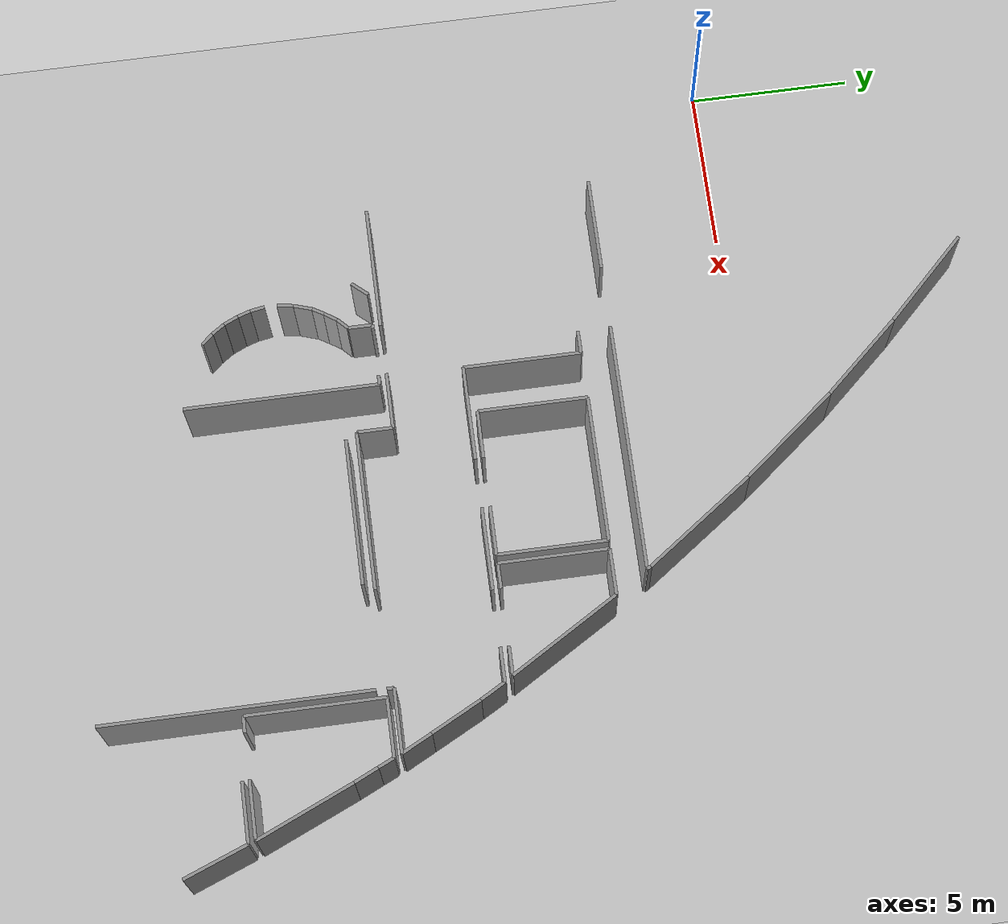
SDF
<sdf version="1.6">
 <world name="default">
  <model name="ground_plane">
   <static>1</static>
   <link name="link">
    <collision name="collision">
     <geometry><plane><normal>0 0 1</normal><size>100 100</size></plane></geometry>
     <surface><friction><ode><mu>100</mu><mu2>50</mu2></ode></friction></surface>
    </collision>
    <visual name="visual">
     <cast_shadows>0</cast_shadows>
     <geometry><plane><normal>0 0 1</normal><size>100 100</size></plane></geometry>
     <material>
      <script><uri>file://media/materials/scripts/gazebo.material</uri><name>Gazebo/Grey</name></script>
     </material>
    </visual>
   </link>
  </model>
  <model name="50041194">
   <static>1</static>
   <link name="Wall_10">
    <collision name="Wall_10_Collision">
     <geometry><box><size>3.47212504948 0.1 2.5</size></box></geometry>
     <pose>1.73606252474 0 1.25 0 0 0</pose>
    </collision>
    <visual name="Wall_10_Visual">
     <pose>1.73606252474 0 1.25 0 0 0</pose>
     <geometry><box><size>3.47212504948 0.1 2.5</size></box></geometry>
     <material>
      <script><uri>file://media/materials/scripts/gazebo.material</uri><name>Gazebo/Grey</name></script>
      <ambient>1 1 1 1</ambient>
     </material>
    </visual>
    <pose>32.4616538105 -17.5243928785 0 0 0 -0.795180966372</pose>
   </link>
   <link name="Wall_11">
    <collision name="Wall_11_Collision">
     <geometry><box><size>3.1130207171 0.1 2.5</size></box></geometry>
     <pose>1.55651035855 0 1.25 0 0 0</pose>
    </collision>
    <visual name="Wall_11_Visual">
     <pose>1.55651035855 0 1.25 0 0 0</pose>
     <geometry><box><size>3.1130207171 0.1 2.5</size></box></geometry>
     <material>
      <script><uri>file://media/materials/scripts/gazebo.material</uri><name>Gazebo/Grey</name></script>
      <ambient>1 1 1 1</ambient>
     </material>
    </visual>
    <pose>34.8926815011 -20.0034565579 0 0 0 -0.837783997723</pose>
   </link>
   <link name="Wall_12">
    <collision name="Wall_12_Collision">
     <geometry><box><size>3.6700077052 0.1 2.5</size></box></geometry>
     <pose>1.8350038526 0 1.25 0 0 0</pose>
    </collision>
    <visual name="Wall_12_Visual">
     <pose>1.8350038526 0 1.25 0 0 0</pose>
     <geometry><box><size>3.6700077052 0.1 2.5</size></box></geometry>
     <material>
      <script><uri>file://media/materials/scripts/gazebo.material</uri><name>Gazebo/Grey</name></script>
      <ambient>1 1 1 1</ambient>
     </material>
    </visual>
    <pose>36.9756388914 -22.3169358631 0 0 0 -0.895433494104</pose>
   </link>
   <link name="Wall_13">
    <collision name="Wall_13_Collision">
     <geometry><box><size>4.07445456339 0.1 2.5</size></box></geometry>
     <pose>2.0372272817 0 1.25 0 0 0</pose>
    </collision>
    <visual name="Wall_13_Visual">
     <pose>2.0372272817 0 1.25 0 0 0</pose>
     <geometry><box><size>4.07445456339 0.1 2.5</size></box></geometry>
     <material>
      <script><uri>file://media/materials/scripts/gazebo.material</uri><name>Gazebo/Grey</name></script>
      <ambient>1 1 1 1</ambient>
     </material>
    </visual>
    <pose>39.2700562961 -25.1813040881 0 0 0 -0.949198087053</pose>
   </link>
   <link name="Wall_14">
    <collision name="Wall_14_Collision">
     <geometry><box><size>0.130030728321 0.1 2.5</size></box></geometry>
     <pose>0.0650153641607 0 1.25 0 0 0</pose>
    </collision>
    <visual name="Wall_14_Visual">
     <pose>0.0650153641607 0 1.25 0 0 0</pose>
     <geometry><box><size>0.130030728321 0.1 2.5</size></box></geometry>
     <material>
      <script><uri>file://media/materials/scripts/gazebo.material</uri><name>Gazebo/Grey</name></script>
      <ambient>1 1 1 1</ambient>
     </material>
    </visual>
    <pose>41.6427545717 -28.4936269713 0 0 0 -1.10671165488</pose>
   </link>
   <link name="Wall_15">
    <collision name="Wall_15_Collision">
     <geometry><box><size>7.74739169664 0.1 2.5</size></box></geometry>
     <pose>3.87369584832 0 1.25 0 0 0</pose>
    </collision>
    <visual name="Wall_15_Visual">
     <pose>3.87369584832 0 1.25 0 0 0</pose>
     <geometry><box><size>7.74739169664 0.1 2.5</size></box></geometry>
     <material>
      <script><uri>file://media/materials/scripts/gazebo.material</uri><name>Gazebo/Grey</name></script>
      <ambient>1 1 1 1</ambient>
     </material>
    </visual>
    <pose>41.7009569074 -28.6099045634 0 0 0 3.14159265359</pose>
   </link>
   <link name="Wall_16">
    <collision name="Wall_16_Collision">
     <geometry><box><size>2.90630440584 0.1 2.5</size></box></geometry>
     <pose>1.45315220292 0 1.25 0 0 0</pose>
    </collision>
    <visual name="Wall_16_Visual">
     <pose>1.45315220292 0 1.25 0 0 0</pose>
     <geometry><box><size>2.90630440584 0.1 2.5</size></box></geometry>
     <material>
      <script><uri>file://media/materials/scripts/gazebo.material</uri><name>Gazebo/Grey</name></script>
      <ambient>1 1 1 1</ambient>
     </material>
    </visual>
    <pose>31.9997204255 -28.6099045634 0 0 0 3.14159265359</pose>
   </link>
   <link name="Wall_37">
    <collision name="Wall_37_Collision">
     <geometry><box><size>0.702113329352 0.1 2.5</size></box></geometry>
     <pose>0.351056664676 0 1.25 0 0 0</pose>
    </collision>
    <visual name="Wall_37_Visual">
     <pose>0.351056664676 0 1.25 0 0 0</pose>
     <geometry><box><size>0.702113329352 0.1 2.5</size></box></geometry>
     <material>
      <script><uri>file://media/materials/scripts/gazebo.material</uri><name>Gazebo/Grey</name></script>
      <ambient>1 1 1 1</ambient>
     </material>
    </visual>
    <pose>33.9738979045 -29.6161187429 0 0 0 0.0</pose>
   </link>
   <link name="Wall_38">
    <collision name="Wall_38_Collision">
     <geometry><box><size>3.6105780839 0.1 2.5</size></box></geometry>
     <pose>1.80528904195 0 1.25 0 0 0</pose>
    </collision>
    <visual name="Wall_38_Visual">
     <pose>1.80528904195 0 1.25 0 0 0</pose>
     <geometry><box><size>3.6105780839 0.1 2.5</size></box></geometry>
     <material>
      <script><uri>file://media/materials/scripts/gazebo.material</uri><name>Gazebo/Grey</name></script>
      <ambient>1 1 1 1</ambient>
     </material>
    </visual>
    <pose>34.6760112338 -29.6161187429 0 0 0 -1.57079632679</pose>
   </link>
   <link name="Wall_39">
    <collision name="Wall_39_Collision">
     <geometry><box><size>2.95522995006 0.1 2.5</size></box></geometry>
     <pose>1.47761497503 0 1.25 0 0 0</pose>
    </collision>
    <visual name="Wall_39_Visual">
     <pose>1.47761497503 0 1.25 0 0 0</pose>
     <geometry><box><size>2.95522995006 0.1 2.5</size></box></geometry>
     <material>
      <script><uri>file://media/materials/scripts/gazebo.material</uri><name>Gazebo/Grey</name></script>
      <ambient>1 1 1 1</ambient>
     </material>
    </visual>
    <pose>34.6760112338 -33.2266968268 0 0 0 0.0</pose>
   </link>
   <link name="Wall_40">
    <collision name="Wall_40_Collision">
     <geometry><box><size>2.56115693027 0.1 2.5</size></box></geometry>
     <pose>1.28057846514 0 1.25 0 0 0</pose>
    </collision>
    <visual name="Wall_40_Visual">
     <pose>1.28057846514 0 1.25 0 0 0</pose>
     <geometry><box><size>2.56115693027 0.1 2.5</size></box></geometry>
     <material>
      <script><uri>file://media/materials/scripts/gazebo.material</uri><name>Gazebo/Grey</name></script>
      <ambient>1 1 1 1</ambient>
     </material>
    </visual>
    <pose>39.1662324789 -33.2266968268 0 0 0 0.0</pose>
   </link>
   <link name="Wall_41">
    <collision name="Wall_41_Collision">
     <geometry><box><size>1.06200200785 0.1 2.5</size></box></geometry>
     <pose>0.531001003927 0 1.25 0 0 0</pose>
    </collision>
    <visual name="Wall_41_Visual">
     <pose>0.531001003927 0 1.25 0 0 0</pose>
     <geometry><box><size>1.06200200785 0.1 2.5</size></box></geometry>
     <material>
      <script><uri>file://media/materials/scripts/gazebo.material</uri><name>Gazebo/Grey</name></script>
      <ambient>1 1 1 1</ambient>
     </material>
    </visual>
    <pose>43.4758739881 -33.2266968268 0 0 0 0.0</pose>
   </link>
   <link name="Wall_42">
    <collision name="Wall_42_Collision">
     <geometry><box><size>0.878517241441 0.1 2.5</size></box></geometry>
     <pose>0.43925862072 0 1.25 0 0 0</pose>
    </collision>
    <visual name="Wall_42_Visual">
     <pose>0.43925862072 0 1.25 0 0 0</pose>
     <geometry><box><size>0.878517241441 0.1 2.5</size></box></geometry>
     <material>
      <script><uri>file://media/materials/scripts/gazebo.material</uri><name>Gazebo/Grey</name></script>
      <ambient>1 1 1 1</ambient>
     </material>
    </visual>
    <pose>44.537875996 -33.2266968268 0 0 0 -1.05595627726</pose>
   </link>
   <link name="Wall_43">
    <collision name="Wall_43_Collision">
     <geometry><box><size>1.73027096718 0.1 2.5</size></box></geometry>
     <pose>0.865135483592 0 1.25 0 0 0</pose>
    </collision>
    <visual name="Wall_43_Visual">
     <pose>0.865135483592 0 1.25 0 0 0</pose>
     <geometry><box><size>1.73027096718 0.1 2.5</size></box></geometry>
     <material>
      <script><uri>file://media/materials/scripts/gazebo.material</uri><name>Gazebo/Grey</name></script>
      <ambient>1 1 1 1</ambient>
     </material>
    </visual>
    <pose>44.9704540545 -33.9913331893 0 0 0 -1.09414153496</pose>
   </link>
   <link name="Wall_44">
    <collision name="Wall_44_Collision">
     <geometry><box><size>1.04257971873 0.1 2.5</size></box></geometry>
     <pose>0.521289859366 0 1.25 0 0 0</pose>
    </collision>
    <visual name="Wall_44_Visual">
     <pose>0.521289859366 0 1.25 0 0 0</pose>
     <geometry><box><size>1.04257971873 0.1 2.5</size></box></geometry>
     <material>
      <script><uri>file://media/materials/scripts/gazebo.material</uri><name>Gazebo/Grey</name></script>
      <ambient>1 1 1 1</ambient>
     </material>
    </visual>
    <pose>45.7643186641 -35.5287389918 0 0 0 -1.09635541692</pose>
   </link>
   <link name="Wall_45">
    <collision name="Wall_45_Collision">
     <geometry><box><size>1.96350281481 0.1 2.5</size></box></geometry>
     <pose>0.981751407404 0 1.25 0 0 0</pose>
    </collision>
    <visual name="Wall_45_Visual">
     <pose>0.981751407404 0 1.25 0 0 0</pose>
     <geometry><box><size>1.96350281481 0.1 2.5</size></box></geometry>
     <material>
      <script><uri>file://media/materials/scripts/gazebo.material</uri><name>Gazebo/Grey</name></script>
      <ambient>1 1 1 1</ambient>
     </material>
    </visual>
    <pose>46.2406120141 -36.4561639832 0 0 0 3.14159265359</pose>
   </link>
   <link name="Wall_46">
    <collision name="Wall_46_Collision">
     <geometry><box><size>0.2140016012 0.1 2.5</size></box></geometry>
     <pose>0.1070008006 0 1.25 0 0 0</pose>
    </collision>
    <visual name="Wall_46_Visual">
     <pose>0.1070008006 0 1.25 0 0 0</pose>
     <geometry><box><size>0.2140016012 0.1 2.5</size></box></geometry>
     <material>
      <script><uri>file://media/materials/scripts/gazebo.material</uri><name>Gazebo/Grey</name></script>
      <ambient>1 1 1 1</ambient>
     </material>
    </visual>
    <pose>44.2771091993 -36.4561639832 0 0 0 -1.57079632679</pose>
   </link>
   <link name="Wall_47">
    <collision name="Wall_47_Collision">
     <geometry><box><size>4.93982793458 0.1 2.5</size></box></geometry>
     <pose>2.46991396729 0 1.25 0 0 0</pose>
    </collision>
    <visual name="Wall_47_Visual">
     <pose>2.46991396729 0 1.25 0 0 0</pose>
     <geometry><box><size>4.93982793458 0.1 2.5</size></box></geometry>
     <material>
      <script><uri>file://media/materials/scripts/gazebo.material</uri><name>Gazebo/Grey</name></script>
      <ambient>1 1 1 1</ambient>
     </material>
    </visual>
    <pose>41.2477919965 -36.6701655844 0 0 0 3.14159265359</pose>
   </link>
   <link name="Wall_48">
    <collision name="Wall_48_Collision">
     <geometry><box><size>1.10597145798 0.1 2.5</size></box></geometry>
     <pose>0.552985728991 0 1.25 0 0 0</pose>
    </collision>
    <visual name="Wall_48_Visual">
     <pose>0.552985728991 0 1.25 0 0 0</pose>
     <geometry><box><size>1.10597145798 0.1 2.5</size></box></geometry>
     <material>
      <script><uri>file://media/materials/scripts/gazebo.material</uri><name>Gazebo/Grey</name></script>
      <ambient>1 1 1 1</ambient>
     </material>
    </visual>
    <pose>36.307964062 -36.6701655844 0 0 0 1.57079632679</pose>
   </link>
   <link name="Wall_49">
    <collision name="Wall_49_Collision">
     <geometry><box><size>1.75216987966 0.1 2.5</size></box></geometry>
     <pose>0.876084939828 0 1.25 0 0 0</pose>
    </collision>
    <visual name="Wall_49_Visual">
     <pose>0.876084939828 0 1.25 0 0 0</pose>
     <geometry><box><size>1.75216987966 0.1 2.5</size></box></geometry>
     <material>
      <script><uri>file://media/materials/scripts/gazebo.material</uri><name>Gazebo/Grey</name></script>
      <ambient>1 1 1 1</ambient>
     </material>
    </visual>
    <pose>36.307964062 -35.5641941264 0 0 0 3.14159265359</pose>
   </link>
   <link name="Wall_50">
    <collision name="Wall_50_Collision">
     <geometry><box><size>3.8320773659 0.1 2.5</size></box></geometry>
     <pose>1.91603868295 0 1.25 0 0 0</pose>
    </collision>
    <visual name="Wall_50_Visual">
     <pose>1.91603868295 0 1.25 0 0 0</pose>
     <geometry><box><size>3.8320773659 0.1 2.5</size></box></geometry>
     <material>
      <script><uri>file://media/materials/scripts/gazebo.material</uri><name>Gazebo/Grey</name></script>
      <ambient>1 1 1 1</ambient>
     </material>
    </visual>
    <pose>32.9930995921 -35.5641941264 0 0 0 3.14159265359</pose>
   </link>
   <link name="Wall_56">
    <collision name="Wall_56_Collision">
     <geometry><box><size>8.20792720896 0.1 2.5</size></box></geometry>
     <pose>4.10396360448 0 1.25 0 0 0</pose>
    </collision>
    <visual name="Wall_56_Visual">
     <pose>4.10396360448 0 1.25 0 0 0</pose>
     <geometry><box><size>8.20792720896 0.1 2.5</size></box></geometry>
     <material>
      <script><uri>file://media/materials/scripts/gazebo.material</uri><name>Gazebo/Grey</name></script>
      <ambient>1 1 1 1</ambient>
     </material>
    </visual>
    <pose>44.263384631 -36.9912950655 0 0 0 -1.57079632679</pose>
   </link>
   <link name="Wall_86">
    <collision name="Wall_86_Collision">
     <geometry><box><size>0.623127726755 0.1 2.5</size></box></geometry>
     <pose>0.311563863378 0 1.25 0 0 0</pose>
    </collision>
    <visual name="Wall_86_Visual">
     <pose>0.311563863378 0 1.25 0 0 0</pose>
     <geometry><box><size>0.623127726755 0.1 2.5</size></box></geometry>
     <material>
      <script><uri>file://media/materials/scripts/gazebo.material</uri><name>Gazebo/Grey</name></script>
      <ambient>1 1 1 1</ambient>
     </material>
    </visual>
    <pose>31.918897968 -35.8216568604 0 0 0 -2.293712713</pose>
   </link>
   <link name="Wall_122">
    <collision name="Wall_122_Collision">
     <geometry><box><size>0.455684773782 0.1 2.5</size></box></geometry>
     <pose>0.227842386891 0 1.25 0 0 0</pose>
    </collision>
    <visual name="Wall_122_Visual">
     <pose>0.227842386891 0 1.25 0 0 0</pose>
     <geometry><box><size>0.455684773782 0.1 2.5</size></box></geometry>
     <material>
      <script><uri>file://media/materials/scripts/gazebo.material</uri><name>Gazebo/Grey</name></script>
      <ambient>1 1 1 1</ambient>
     </material>
    </visual>
    <pose>32.8891486955 -41.0143726729 0 0 0 2.31121891848</pose>
   </link>
   <link name="Wall_123">
    <collision name="Wall_123_Collision">
     <geometry><box><size>0.469061258267 0.1 2.5</size></box></geometry>
     <pose>0.234530629133 0 1.25 0 0 0</pose>
    </collision>
    <visual name="Wall_123_Visual">
     <pose>0.234530629133 0 1.25 0 0 0</pose>
     <geometry><box><size>0.469061258267 0.1 2.5</size></box></geometry>
     <material>
      <script><uri>file://media/materials/scripts/gazebo.material</uri><name>Gazebo/Grey</name></script>
      <ambient>1 1 1 1</ambient>
     </material>
    </visual>
    <pose>32.5817437826 -40.6779936714 0 0 0 2.17337669073</pose>
   </link>
   <link name="Wall_124">
    <collision name="Wall_124_Collision">
     <geometry><box><size>0.479552104418 0.1 2.5</size></box></geometry>
     <pose>0.239776052209 0 1.25 0 0 0</pose>
    </collision>
    <visual name="Wall_124_Visual">
     <pose>0.239776052209 0 1.25 0 0 0</pose>
     <geometry><box><size>0.479552104418 0.1 2.5</size></box></geometry>
     <material>
      <script><uri>file://media/materials/scripts/gazebo.material</uri><name>Gazebo/Grey</name></script>
      <ambient>1 1 1 1</ambient>
     </material>
    </visual>
    <pose>32.3158938125 -40.2915454118 0 0 0 1.99959501198</pose>
   </link>
   <link name="Wall_125">
    <collision name="Wall_125_Collision">
     <geometry><box><size>0.415170445571 0.1 2.5</size></box></geometry>
     <pose>0.207585222785 0 1.25 0 0 0</pose>
    </collision>
    <visual name="Wall_125_Visual">
     <pose>0.207585222785 0 1.25 0 0 0</pose>
     <geometry><box><size>0.415170445571 0.1 2.5</size></box></geometry>
     <material>
      <script><uri>file://media/materials/scripts/gazebo.material</uri><name>Gazebo/Grey</name></script>
      <ambient>1 1 1 1</ambient>
     </material>
    </visual>
    <pose>32.1165063349 -39.8554091319 0 0 0 1.88606163671</pose>
   </link>
   <link name="Wall_126">
    <collision name="Wall_126_Collision">
     <geometry><box><size>0.454791731591 0.1 2.5</size></box></geometry>
     <pose>0.227395865796 0 1.25 0 0 0</pose>
    </collision>
    <visual name="Wall_126_Visual">
     <pose>0.227395865796 0 1.25 0 0 0</pose>
     <geometry><box><size>0.454791731591 0.1 2.5</size></box></geometry>
     <material>
      <script><uri>file://media/materials/scripts/gazebo.material</uri><name>Gazebo/Grey</name></script>
      <ambient>1 1 1 1</ambient>
     </material>
    </visual>
    <pose>31.9877749679 -39.4607007155 0 0 0 1.73612875174</pose>
   </link>
   <link name="Wall_128">
    <collision name="Wall_128_Collision">
     <geometry><box><size>0.50411989635 0.1 2.5</size></box></geometry>
     <pose>0.252059948175 0 1.25 0 0 0</pose>
    </collision>
    <visual name="Wall_128_Visual">
     <pose>0.252059948175 0 1.25 0 0 0</pose>
     <geometry><box><size>0.50411989635 0.1 2.5</size></box></geometry>
     <material>
      <script><uri>file://media/materials/scripts/gazebo.material</uri><name>Gazebo/Grey</name></script>
      <ambient>1 1 1 1</ambient>
     </material>
    </visual>
    <pose>31.9129252392 -38.6298560191 0 0 0 1.42176926824</pose>
   </link>
   <link name="Wall_129">
    <collision name="Wall_129_Collision">
     <geometry><box><size>0.59369133143 0.1 2.5</size></box></geometry>
     <pose>0.296845665715 0 1.25 0 0 0</pose>
    </collision>
    <visual name="Wall_129_Visual">
     <pose>0.296845665715 0 1.25 0 0 0</pose>
     <geometry><box><size>0.59369133143 0.1 2.5</size></box></geometry>
     <material>
      <script><uri>file://media/materials/scripts/gazebo.material</uri><name>Gazebo/Grey</name></script>
      <ambient>1 1 1 1</ambient>
     </material>
    </visual>
    <pose>31.9877749679 -38.1313237854 0 0 0 1.25791306858</pose>
   </link>
   <link name="Wall_130">
    <collision name="Wall_130_Collision">
     <geometry><box><size>0.396889842771 0.1 2.5</size></box></geometry>
     <pose>0.198444921386 0 1.25 0 0 0</pose>
    </collision>
    <visual name="Wall_130_Visual">
     <pose>0.198444921386 0 1.25 0 0 0</pose>
     <geometry><box><size>0.396889842771 0.1 2.5</size></box></geometry>
     <material>
      <script><uri>file://media/materials/scripts/gazebo.material</uri><name>Gazebo/Grey</name></script>
      <ambient>1 1 1 1</ambient>
     </material>
    </visual>
    <pose>32.1705150525 -37.5664561386 0 0 0 1.03218891613</pose>
   </link>
   <link name="Wall_131">
    <collision name="Wall_131_Collision">
     <geometry><box><size>0.443565537871 0.1 2.5</size></box></geometry>
     <pose>0.221782768936 0 1.25 0 0 0</pose>
    </collision>
    <visual name="Wall_131_Visual">
     <pose>0.221782768936 0 1.25 0 0 0</pose>
     <geometry><box><size>0.443565537871 0.1 2.5</size></box></geometry>
     <material>
      <script><uri>file://media/materials/scripts/gazebo.material</uri><name>Gazebo/Grey</name></script>
      <ambient>1 1 1 1</ambient>
     </material>
    </visual>
    <pose>32.3740961482 -37.2257564397 0 0 0 0.985256968166</pose>
   </link>
   <link name="Wall_132">
    <collision name="Wall_132_Collision">
     <geometry><box><size>0.440615724524 0.1 2.5</size></box></geometry>
     <pose>0.220307862262 0 1.25 0 0 0</pose>
    </collision>
    <visual name="Wall_132_Visual">
     <pose>0.220307862262 0 1.25 0 0 0</pose>
     <geometry><box><size>0.440615724524 0.1 2.5</size></box></geometry>
     <material>
      <script><uri>file://media/materials/scripts/gazebo.material</uri><name>Gazebo/Grey</name></script>
      <ambient>1 1 1 1</ambient>
     </material>
    </visual>
    <pose>32.6192321867 -36.8560826524 0 0 0 0.772141750504</pose>
   </link>
   <link name="Wall_133">
    <collision name="Wall_133_Collision">
     <geometry><box><size>0.743668272102 0.1 2.5</size></box></geometry>
     <pose>0.371834136051 0 1.25 0 0 0</pose>
    </collision>
    <visual name="Wall_133_Visual">
     <pose>0.371834136051 0 1.25 0 0 0</pose>
     <geometry><box><size>0.743668272102 0.1 2.5</size></box></geometry>
     <material>
      <script><uri>file://media/materials/scripts/gazebo.material</uri><name>Gazebo/Grey</name></script>
      <ambient>1 1 1 1</ambient>
     </material>
    </visual>
    <pose>32.9348972564 -36.5486777395 0 0 0 1.57079632679</pose>
   </link>
   <link name="Wall_134">
    <collision name="Wall_134_Collision">
     <geometry><box><size>0.112211053361 0.1 2.5</size></box></geometry>
     <pose>0.0561055266803 0 1.25 0 0 0</pose>
    </collision>
    <visual name="Wall_134_Visual">
     <pose>0.0561055266803 0 1.25 0 0 0</pose>
     <geometry><box><size>0.112211053361 0.1 2.5</size></box></geometry>
     <material>
      <script><uri>file://media/materials/scripts/gazebo.material</uri><name>Gazebo/Grey</name></script>
      <ambient>1 1 1 1</ambient>
     </material>
    </visual>
    <pose>32.9348972564 -35.8050094674 0 0 0 0.0</pose>
   </link>
   <link name="Wall_135">
    <collision name="Wall_135_Collision">
     <geometry><box><size>0.278049586357 0.1 2.5</size></box></geometry>
     <pose>0.139024793178 0 1.25 0 0 0</pose>
    </collision>
    <visual name="Wall_135_Visual">
     <pose>0.139024793178 0 1.25 0 0 0</pose>
     <geometry><box><size>0.278049586357 0.1 2.5</size></box></geometry>
     <material>
      <script><uri>file://media/materials/scripts/gazebo.material</uri><name>Gazebo/Grey</name></script>
      <ambient>1 1 1 1</ambient>
     </material>
    </visual>
    <pose>34.5936638243 -35.8050094674 0 0 0 0.0</pose>
   </link>
   <link name="Wall_136">
    <collision name="Wall_136_Collision">
     <geometry><box><size>5.98887046044 0.1 2.5</size></box></geometry>
     <pose>2.99443523022 0 1.25 0 0 0</pose>
    </collision>
    <visual name="Wall_136_Visual">
     <pose>2.99443523022 0 1.25 0 0 0</pose>
     <geometry><box><size>5.98887046044 0.1 2.5</size></box></geometry>
     <material>
      <script><uri>file://media/materials/scripts/gazebo.material</uri><name>Gazebo/Grey</name></script>
      <ambient>1 1 1 1</ambient>
     </material>
    </visual>
    <pose>34.8717134107 -35.8050094674 0 0 0 -1.56986267969</pose>
   </link>
   <link name="Wall_137">
    <collision name="Wall_137_Collision">
     <geometry><box><size>3.36239214141 0.1 2.5</size></box></geometry>
     <pose>1.68119607071 0 1.25 0 0 0</pose>
    </collision>
    <visual name="Wall_137_Visual">
     <pose>1.68119607071 0 1.25 0 0 0</pose>
     <geometry><box><size>3.36239214141 0.1 2.5</size></box></geometry>
     <material>
      <script><uri>file://media/materials/scripts/gazebo.material</uri><name>Gazebo/Grey</name></script>
      <ambient>1 1 1 1</ambient>
     </material>
    </visual>
    <pose>36.1290363574 -32.9749526629 0 0 0 1.57079632679</pose>
   </link>
   <link name="Wall_138">
    <collision name="Wall_138_Collision">
     <geometry><box><size>4.53901971 0.1 2.5</size></box></geometry>
     <pose>2.269509855 0 1.25 0 0 0</pose>
    </collision>
    <visual name="Wall_138_Visual">
     <pose>2.269509855 0 1.25 0 0 0</pose>
     <geometry><box><size>4.53901971 0.1 2.5</size></box></geometry>
     <material>
      <script><uri>file://media/materials/scripts/gazebo.material</uri><name>Gazebo/Grey</name></script>
      <ambient>1 1 1 1</ambient>
     </material>
    </visual>
    <pose>36.1290363574 -29.6125605215 0 0 0 0.0</pose>
   </link>
   <link name="Wall_139">
    <collision name="Wall_139_Collision">
     <geometry><box><size>3.36950858421 0.1 2.5</size></box></geometry>
     <pose>1.6847542921 0 1.25 0 0 0</pose>
    </collision>
    <visual name="Wall_139_Visual">
     <pose>1.6847542921 0 1.25 0 0 0</pose>
     <geometry><box><size>3.36950858421 0.1 2.5</size></box></geometry>
     <material>
      <script><uri>file://media/materials/scripts/gazebo.material</uri><name>Gazebo/Grey</name></script>
      <ambient>1 1 1 1</ambient>
     </material>
    </visual>
    <pose>40.6680560674 -29.6125605215 0 0 0 -1.57079632679</pose>
   </link>
   <link name="Wall_140">
    <collision name="Wall_140_Collision">
     <geometry><box><size>1.51516691871 0.1 2.5</size></box></geometry>
     <pose>0.757583459354 0 1.25 0 0 0</pose>
    </collision>
    <visual name="Wall_140_Visual">
     <pose>0.757583459354 0 1.25 0 0 0</pose>
     <geometry><box><size>1.51516691871 0.1 2.5</size></box></geometry>
     <material>
      <script><uri>file://media/materials/scripts/gazebo.material</uri><name>Gazebo/Grey</name></script>
      <ambient>1 1 1 1</ambient>
     </material>
    </visual>
    <pose>40.6680560674 -32.9820691057 0 0 0 3.14159265359</pose>
   </link>
   <link name="Wall_141">
    <collision name="Wall_141_Collision">
     <geometry><box><size>1.49103882774 0.1 2.5</size></box></geometry>
     <pose>0.745519413872 0 1.25 0 0 0</pose>
    </collision>
    <visual name="Wall_141_Visual">
     <pose>0.745519413872 0 1.25 0 0 0</pose>
     <geometry><box><size>1.49103882774 0.1 2.5</size></box></geometry>
     <material>
      <script><uri>file://media/materials/scripts/gazebo.material</uri><name>Gazebo/Grey</name></script>
      <ambient>1 1 1 1</ambient>
     </material>
    </visual>
    <pose>37.6200582023 -32.9820691057 0 0 0 3.13681982697</pose>
   </link>
   <link name="Wall_142">
    <collision name="Wall_142_Collision">
     <geometry><box><size>3.35654649197 0.1 2.5</size></box></geometry>
     <pose>1.67827324599 0 1.25 0 0 0</pose>
    </collision>
    <visual name="Wall_142_Visual">
     <pose>1.67827324599 0 1.25 0 0 0</pose>
     <geometry><box><size>3.35654649197 0.1 2.5</size></box></geometry>
     <material>
      <script><uri>file://media/materials/scripts/gazebo.material</uri><name>Gazebo/Grey</name></script>
      <ambient>1 1 1 1</ambient>
     </material>
    </visual>
    <pose>40.9280603881 -32.9774942497 0 0 0 1.57079632679</pose>
   </link>
   <link name="Wall_143">
    <collision name="Wall_143_Collision">
     <geometry><box><size>1.42328855905 0.1 2.5</size></box></geometry>
     <pose>0.711644279524 0 1.25 0 0 0</pose>
    </collision>
    <visual name="Wall_143_Visual">
     <pose>0.711644279524 0 1.25 0 0 0</pose>
     <geometry><box><size>1.42328855905 0.1 2.5</size></box></geometry>
     <material>
      <script><uri>file://media/materials/scripts/gazebo.material</uri><name>Gazebo/Grey</name></script>
      <ambient>1 1 1 1</ambient>
     </material>
    </visual>
    <pose>40.9280603881 -29.6209477577 0 0 0 0.0</pose>
   </link>
   <link name="Wall_144">
    <collision name="Wall_144_Collision">
     <geometry><box><size>3.91443706126 0.1 2.5</size></box></geometry>
     <pose>1.95721853063 0 1.25 0 0 0</pose>
    </collision>
    <visual name="Wall_144_Visual">
     <pose>1.95721853063 0 1.25 0 0 0</pose>
     <geometry><box><size>3.91443706126 0.1 2.5</size></box></geometry>
     <material>
      <script><uri>file://media/materials/scripts/gazebo.material</uri><name>Gazebo/Grey</name></script>
      <ambient>1 1 1 1</ambient>
     </material>
    </visual>
    <pose>42.3513489471 -29.6209477577 0 0 0 -1.02833352467</pose>
   </link>
   <link name="Wall_145">
    <collision name="Wall_145_Collision">
     <geometry><box><size>0.902898679646 0.1 2.5</size></box></geometry>
     <pose>0.451449339823 0 1.25 0 0 0</pose>
    </collision>
    <visual name="Wall_145_Visual">
     <pose>0.451449339823 0 1.25 0 0 0</pose>
     <geometry><box><size>0.902898679646 0.1 2.5</size></box></geometry>
     <material>
      <script><uri>file://media/materials/scripts/gazebo.material</uri><name>Gazebo/Grey</name></script>
      <ambient>1 1 1 1</ambient>
     </material>
    </visual>
    <pose>44.3721645423 -32.9734277109 0 0 0 3.14159265359</pose>
   </link>
   <link name="Wall_146">
    <collision name="Wall_146_Collision">
     <geometry><box><size>0.78497958948 0.1 2.5</size></box></geometry>
     <pose>0.39248979474 0 1.25 0 0 0</pose>
    </collision>
    <visual name="Wall_146_Visual">
     <pose>0.39248979474 0 1.25 0 0 0</pose>
     <geometry><box><size>0.78497958948 0.1 2.5</size></box></geometry>
     <material>
      <script><uri>file://media/materials/scripts/gazebo.material</uri><name>Gazebo/Grey</name></script>
      <ambient>1 1 1 1</ambient>
     </material>
    </visual>
    <pose>41.7130294443 -32.9734277109 0 0 0 -3.1364121916</pose>
   </link>
   <link name="Wall_148">
    <collision name="Wall_148_Collision">
     <geometry><box><size>4.55922532437 0.1 2.5</size></box></geometry>
     <pose>2.27961266219 0 1.25 0 0 0</pose>
    </collision>
    <visual name="Wall_148_Visual">
     <pose>2.27961266219 0 1.25 0 0 0</pose>
     <geometry><box><size>4.55922532437 0.1 2.5</size></box></geometry>
     <material>
      <script><uri>file://media/materials/scripts/gazebo.material</uri><name>Gazebo/Grey</name></script>
      <ambient>1 1 1 1</ambient>
     </material>
    </visual>
    <pose>36.4978205894 -37.0151859806 0 0 0 0.0</pose>
   </link>
   <link name="Wall_157">
    <collision name="Wall_157_Collision">
     <geometry><box><size>1.8415066526 0.1 2.5</size></box></geometry>
     <pose>0.920753326302 0 1.25 0 0 0</pose>
    </collision>
    <visual name="Wall_157_Visual">
     <pose>0.920753326302 0 1.25 0 0 0</pose>
     <geometry><box><size>1.8415066526 0.1 2.5</size></box></geometry>
     <material>
      <script><uri>file://media/materials/scripts/gazebo.material</uri><name>Gazebo/Grey</name></script>
      <ambient>1 1 1 1</ambient>
     </material>
    </visual>
    <pose>46.4279269548 -41.1270920436 0 0 0 0.0</pose>
   </link>
   <link name="Wall_158">
    <collision name="Wall_158_Collision">
     <geometry><box><size>2.10616667768 0.1 2.5</size></box></geometry>
     <pose>1.05308333884 0 1.25 0 0 0</pose>
    </collision>
    <visual name="Wall_158_Visual">
     <pose>1.05308333884 0 1.25 0 0 0</pose>
     <geometry><box><size>2.10616667768 0.1 2.5</size></box></geometry>
     <material>
      <script><uri>file://media/materials/scripts/gazebo.material</uri><name>Gazebo/Grey</name></script>
      <ambient>1 1 1 1</ambient>
     </material>
    </visual>
    <pose>48.2694336074 -41.1270920436 0 0 0 -1.20062046165</pose>
   </link>
   <link name="Wall_161">
    <collision name="Wall_161_Collision">
     <geometry><box><size>4.20950299272 0.1 2.5</size></box></geometry>
     <pose>2.10475149636 0 1.25 0 0 0</pose>
    </collision>
    <visual name="Wall_161_Visual">
     <pose>2.10475149636 0 1.25 0 0 0</pose>
     <geometry><box><size>4.20950299272 0.1 2.5</size></box></geometry>
     <material>
      <script><uri>file://media/materials/scripts/gazebo.material</uri><name>Gazebo/Grey</name></script>
      <ambient>1 1 1 1</ambient>
     </material>
    </visual>
    <pose>44.521228603 -40.9035594922 0 0 0 1.57079632679</pose>
   </link>
   <link name="Wall_162">
    <collision name="Wall_162_Collision">
     <geometry><box><size>1.80986389803 0.1 2.5</size></box></geometry>
     <pose>0.904931949016 0 1.25 0 0 0</pose>
    </collision>
    <visual name="Wall_162_Visual">
     <pose>0.904931949016 0 1.25 0 0 0</pose>
     <geometry><box><size>1.80986389803 0.1 2.5</size></box></geometry>
     <material>
      <script><uri>file://media/materials/scripts/gazebo.material</uri><name>Gazebo/Grey</name></script>
      <ambient>1 1 1 1</ambient>
     </material>
    </visual>
    <pose>44.521228603 -36.6940564995 0 0 0 0.0</pose>
   </link>
   <link name="Wall_163">
    <collision name="Wall_163_Collision">
     <geometry><box><size>0.535874497616 0.1 2.5</size></box></geometry>
     <pose>0.267937248808 0 1.25 0 0 0</pose>
    </collision>
    <visual name="Wall_163_Visual">
     <pose>0.267937248808 0 1.25 0 0 0</pose>
     <geometry><box><size>0.535874497616 0.1 2.5</size></box></geometry>
     <material>
      <script><uri>file://media/materials/scripts/gazebo.material</uri><name>Gazebo/Grey</name></script>
      <ambient>1 1 1 1</ambient>
     </material>
    </visual>
    <pose>46.331092501 -36.6940564995 0 0 0 -1.14024359083</pose>
   </link>
   <link name="Wall_164">
    <collision name="Wall_164_Collision">
     <geometry><box><size>0.816418420013 0.1 2.5</size></box></geometry>
     <pose>0.408209210007 0 1.25 0 0 0</pose>
    </collision>
    <visual name="Wall_164_Visual">
     <pose>0.408209210007 0 1.25 0 0 0</pose>
     <geometry><box><size>0.816418420013 0.1 2.5</size></box></geometry>
     <material>
      <script><uri>file://media/materials/scripts/gazebo.material</uri><name>Gazebo/Grey</name></script>
      <ambient>1 1 1 1</ambient>
     </material>
    </visual>
    <pose>46.5547521318 -37.1810245136 0 0 0 -1.13499666999</pose>
   </link>
   <link name="Wall_165">
    <collision name="Wall_165_Collision">
     <geometry><box><size>3.25787435908 0.1 2.5</size></box></geometry>
     <pose>1.62893717954 0 1.25 0 0 0</pose>
    </collision>
    <visual name="Wall_165_Visual">
     <pose>1.62893717954 0 1.25 0 0 0</pose>
     <geometry><box><size>3.25787435908 0.1 2.5</size></box></geometry>
     <material>
      <script><uri>file://media/materials/scripts/gazebo.material</uri><name>Gazebo/Grey</name></script>
      <ambient>1 1 1 1</ambient>
     </material>
    </visual>
    <pose>46.89939129 -37.9211345643 0 0 0 -1.16130510562</pose>
   </link>
   <link name="Wall_166">
    <collision name="Wall_166_Collision">
     <geometry><box><size>1.7880062523 0.1 2.5</size></box></geometry>
     <pose>0.894003126152 0 1.25 0 0 0</pose>
    </collision>
    <visual name="Wall_166_Visual">
     <pose>0.894003126152 0 1.25 0 0 0</pose>
     <geometry><box><size>1.7880062523 0.1 2.5</size></box></geometry>
     <material>
      <script><uri>file://media/materials/scripts/gazebo.material</uri><name>Gazebo/Grey</name></script>
      <ambient>1 1 1 1</ambient>
     </material>
    </visual>
    <pose>48.1964900687 -40.9096593003 0 0 0 3.14159265359</pose>
   </link>
   <link name="Wall_167">
    <collision name="Wall_167_Collision">
     <geometry><box><size>0.4961552237 0.1 2.5</size></box></geometry>
     <pose>0.24807761185 0 1.25 0 0 0</pose>
    </collision>
    <visual name="Wall_167_Visual">
     <pose>0.24807761185 0 1.25 0 0 0</pose>
     <geometry><box><size>0.4961552237 0.1 2.5</size></box></geometry>
     <material>
      <script><uri>file://media/materials/scripts/gazebo.material</uri><name>Gazebo/Grey</name></script>
      <ambient>1 1 1 1</ambient>
     </material>
    </visual>
    <pose>45.0173463293 -40.9096593003 0 0 0 3.12929819111</pose>
   </link>
   <pose>-25.65 24.674331245 0 0 0 0</pose>
  </model>
 </world>
</sdf>
